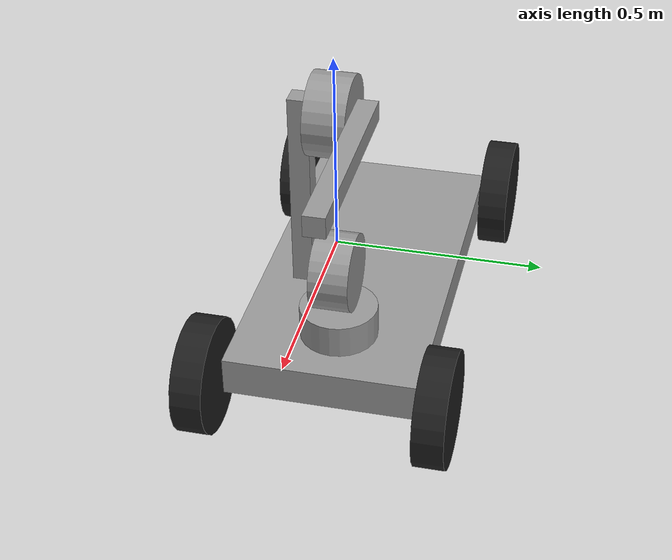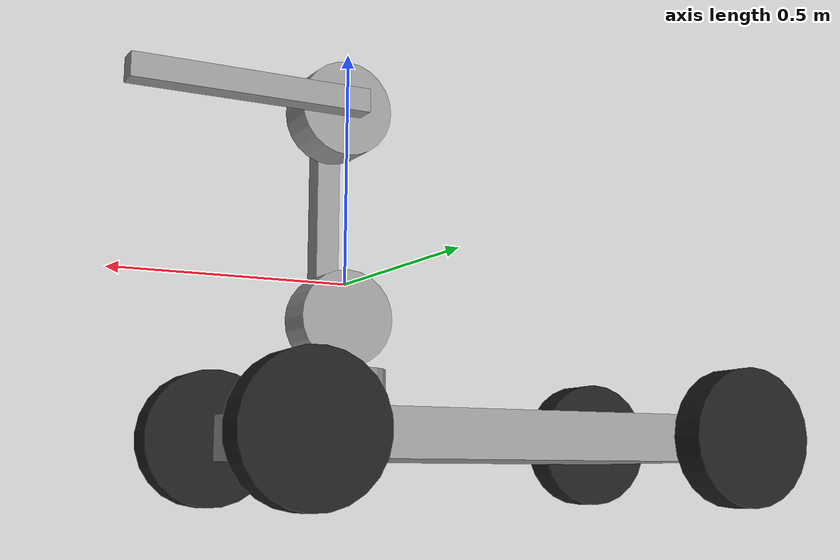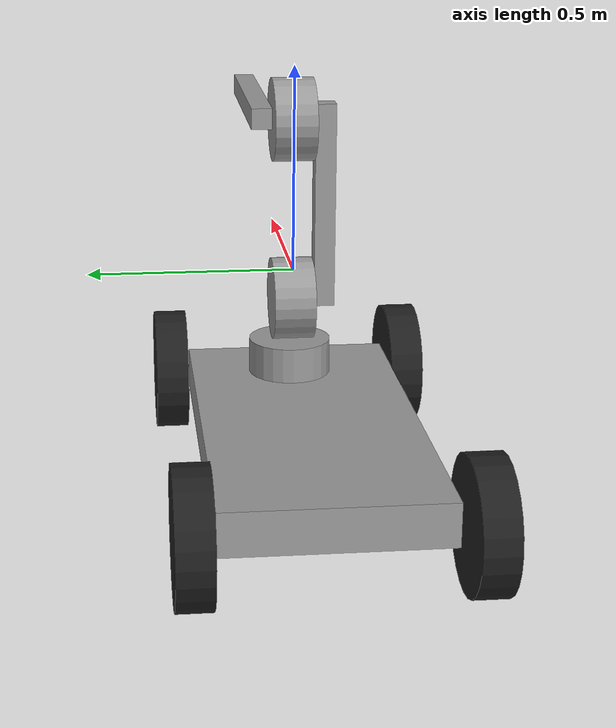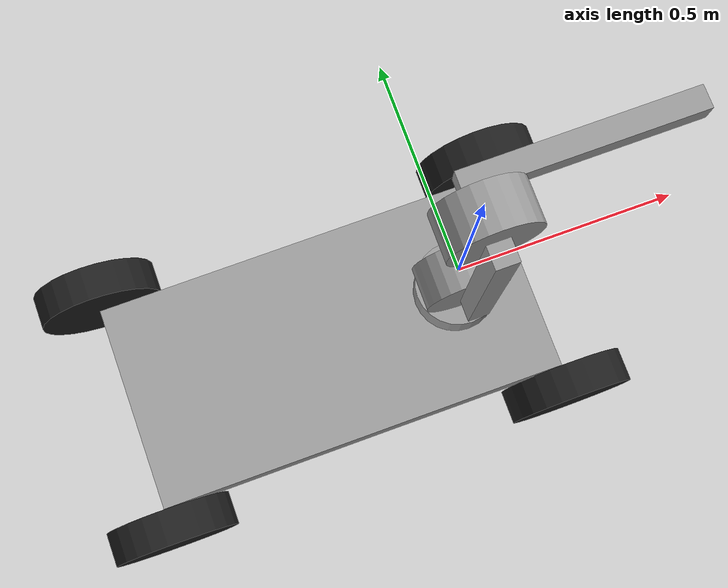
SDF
<?xml version='1.0'?>
<sdf version='1.7'>
  <model name='cartArm'>
    <link name='link_1'>
      <inertial>
        <mass>1</mass>
        <inertia>
          <ixx>0.145833</ixx>
          <ixy>0</ixy>
          <ixz>0</ixz>
          <iyy>0.145833</iyy>
          <iyz>0</iyz>
          <izz>0.125</izz>
        </inertia>
        <pose>0 0 0 0 -0 0</pose>
      </inertial>
      <pose>0.017175 0.00621 -0.229836 0 -0 0</pose>
      <gravity>1</gravity>
      <self_collide>0</self_collide>
      <kinematic>0</kinematic>
      <enable_wind>0</enable_wind>
      <visual name='visual'>
        <pose>0 0 0 0 -0 0</pose>
        <geometry>
          <cylinder>
            <radius>0.1</radius>
            <length>0.1</length>
          </cylinder>
        </geometry>
        <material>
          <lighting>1</lighting>
          <script>
            <uri>file://media/materials/scripts/gazebo.material</uri>
            <name>Gazebo/Grey</name>
          </script>
          <shader type='pixel'>
            <normal_map>__default__</normal_map>
          </shader>
          <ambient>0.3 0.3 0.3 1</ambient>
          <diffuse>0.7 0.7 0.7 1</diffuse>
          <specular>0.01 0.01 0.01 1</specular>
          <emissive>0 0 0 1</emissive>
        </material>
        <transparency>0</transparency>
        <cast_shadows>1</cast_shadows>
      </visual>
      <collision name='collision'>
        <laser_retro>0</laser_retro>
        <max_contacts>10</max_contacts>
        <pose>0 0 0 0 -0 0</pose>
        <geometry>
          <cylinder>
            <radius>0.1</radius>
            <length>0.1</length>
          </cylinder>
        </geometry>
        <surface>
          <friction>
            <ode>
              <mu>1</mu>
              <mu2>1</mu2>
              <fdir1>0 0 0</fdir1>
              <slip1>0</slip1>
              <slip2>0</slip2>
            </ode>
            <torsional>
              <coefficient>1</coefficient>
              <patch_radius>0</patch_radius>
              <surface_radius>0</surface_radius>
              <use_patch_radius>1</use_patch_radius>
              <ode>
                <slip>0</slip>
              </ode>
            </torsional>
          </friction>
          <bounce>
            <restitution_coefficient>0</restitution_coefficient>
            <threshold>1e+06</threshold>
          </bounce>
          <contact>
            <collide_without_contact>0</collide_without_contact>
            <collide_without_contact_bitmask>1</collide_without_contact_bitmask>
            <collide_bitmask>1</collide_bitmask>
            <ode>
              <soft_cfm>0</soft_cfm>
              <soft_erp>0.2</soft_erp>
              <kp>1e+13</kp>
              <kd>1</kd>
              <max_vel>0.01</max_vel>
              <min_depth>0</min_depth>
            </ode>
            <bullet>
              <split_impulse>1</split_impulse>
              <split_impulse_penetration_threshold>-0.01</split_impulse_penetration_threshold>
              <soft_cfm>0</soft_cfm>
              <soft_erp>0.2</soft_erp>
              <kp>1e+13</kp>
              <kd>1</kd>
            </bullet>
          </contact>
        </surface>
      </collision>
    </link>
    <link name='link_2'>
      <inertial>
        <mass>1</mass>
        <inertia>
          <ixx>0.145833</ixx>
          <ixy>0</ixy>
          <ixz>0</ixz>
          <iyy>0.145833</iyy>
          <iyz>0</iyz>
          <izz>0.125</izz>
        </inertia>
        <pose>0 0 0 0 -0 0</pose>
      </inertial>
      <pose>0.01439 0.001977 -0.075713 1.57 -0 0</pose>
      <gravity>1</gravity>
      <self_collide>0</self_collide>
      <kinematic>0</kinematic>
      <enable_wind>0</enable_wind>
      <visual name='visual'>
        <pose>0 0 0 0 -0 0</pose>
        <geometry>
          <cylinder>
            <radius>0.1</radius>
            <length>0.1</length>
          </cylinder>
        </geometry>
        <material>
          <lighting>1</lighting>
          <script>
            <uri>file://media/materials/scripts/gazebo.material</uri>
            <name>Gazebo/Grey</name>
          </script>
          <shader type='pixel'>
            <normal_map>__default__</normal_map>
          </shader>
          <ambient>0.3 0.3 0.3 1</ambient>
          <diffuse>0.7 0.7 0.7 1</diffuse>
          <specular>0.01 0.01 0.01 1</specular>
          <emissive>0 0 0 1</emissive>
        </material>
        <transparency>0</transparency>
        <cast_shadows>1</cast_shadows>
      </visual>
      <collision name='collision'>
        <laser_retro>0</laser_retro>
        <max_contacts>10</max_contacts>
        <pose>0 0 0 0 -0 0</pose>
        <geometry>
          <cylinder>
            <radius>0.1</radius>
            <length>0.1</length>
          </cylinder>
        </geometry>
        <surface>
          <friction>
            <ode>
              <mu>1</mu>
              <mu2>1</mu2>
              <fdir1>0 0 0</fdir1>
              <slip1>0</slip1>
              <slip2>0</slip2>
            </ode>
            <torsional>
              <coefficient>1</coefficient>
              <patch_radius>0</patch_radius>
              <surface_radius>0</surface_radius>
              <use_patch_radius>1</use_patch_radius>
              <ode>
                <slip>0</slip>
              </ode>
            </torsional>
          </friction>
          <bounce>
            <restitution_coefficient>0</restitution_coefficient>
            <threshold>1e+06</threshold>
          </bounce>
          <contact>
            <collide_without_contact>0</collide_without_contact>
            <collide_without_contact_bitmask>1</collide_without_contact_bitmask>
            <collide_bitmask>1</collide_bitmask>
            <ode>
              <soft_cfm>0</soft_cfm>
              <soft_erp>0.2</soft_erp>
              <kp>1e+13</kp>
              <kd>1</kd>
              <max_vel>0.01</max_vel>
              <min_depth>0</min_depth>
            </ode>
            <bullet>
              <split_impulse>1</split_impulse>
              <split_impulse_penetration_threshold>-0.01</split_impulse_penetration_threshold>
              <soft_cfm>0</soft_cfm>
              <soft_erp>0.2</soft_erp>
              <kp>1e+13</kp>
              <kd>1</kd>
            </bullet>
          </contact>
        </surface>
      </collision>
    </link>
    <link name='link_3'>
      <inertial>
        <mass>1</mass>
        <inertia>
          <ixx>0.166667</ixx>
          <ixy>0</ixy>
          <ixz>0</ixz>
          <iyy>0.166667</iyy>
          <iyz>0</iyz>
          <izz>0.166667</izz>
        </inertia>
        <pose>0 0 0 0 -0 0</pose>
      </inertial>
      <pose>0.018985 -0.076327 0.156781 0 -0 0</pose>
      <gravity>1</gravity>
      <self_collide>0</self_collide>
      <kinematic>0</kinematic>
      <enable_wind>0</enable_wind>
      <visual name='visual'>
        <pose>0 0 0 0 -0 0</pose>
        <geometry>
          <box>
            <size>0.05 0.05 0.5</size>
          </box>
        </geometry>
        <material>
          <lighting>1</lighting>
          <script>
            <uri>file://media/materials/scripts/gazebo.material</uri>
            <name>Gazebo/Grey</name>
          </script>
          <shader type='pixel'>
            <normal_map>__default__</normal_map>
          </shader>
          <ambient>0.3 0.3 0.3 1</ambient>
          <diffuse>0.7 0.7 0.7 1</diffuse>
          <specular>0.01 0.01 0.01 1</specular>
          <emissive>0 0 0 1</emissive>
        </material>
        <transparency>0</transparency>
        <cast_shadows>1</cast_shadows>
      </visual>
      <collision name='collision'>
        <laser_retro>0</laser_retro>
        <max_contacts>10</max_contacts>
        <pose>0 0 0 0 -0 0</pose>
        <geometry>
          <box>
            <size>0.05 0.05 0.05</size>
          </box>
        </geometry>
        <surface>
          <friction>
            <ode>
              <mu>1</mu>
              <mu2>1</mu2>
              <fdir1>0 0 0</fdir1>
              <slip1>0</slip1>
              <slip2>0</slip2>
            </ode>
            <torsional>
              <coefficient>1</coefficient>
              <patch_radius>0</patch_radius>
              <surface_radius>0</surface_radius>
              <use_patch_radius>1</use_patch_radius>
              <ode>
                <slip>0</slip>
              </ode>
            </torsional>
          </friction>
          <bounce>
            <restitution_coefficient>0</restitution_coefficient>
            <threshold>1e+06</threshold>
          </bounce>
          <contact>
            <collide_without_contact>0</collide_without_contact>
            <collide_without_contact_bitmask>1</collide_without_contact_bitmask>
            <collide_bitmask>1</collide_bitmask>
            <ode>
              <soft_cfm>0</soft_cfm>
              <soft_erp>0.2</soft_erp>
              <kp>1e+13</kp>
              <kd>1</kd>
              <max_vel>0.01</max_vel>
              <min_depth>0</min_depth>
            </ode>
            <bullet>
              <split_impulse>1</split_impulse>
              <split_impulse_penetration_threshold>-0.01</split_impulse_penetration_threshold>
              <soft_cfm>0</soft_cfm>
              <soft_erp>0.2</soft_erp>
              <kp>1e+13</kp>
              <kd>1</kd>
            </bullet>
          </contact>
        </surface>
      </collision>
    </link>
    <link name='link_5'>
      <inertial>
        <mass>1</mass>
        <inertia>
          <ixx>0.145833</ixx>
          <ixy>0</ixy>
          <ixz>0</ixz>
          <iyy>0.145833</iyy>
          <iyz>0</iyz>
          <izz>0.125</izz>
        </inertia>
        <pose>0 0 0 0 -0 0</pose>
      </inertial>
      <pose>0.020886 0.001552 0.367544 1.56575 -0 0</pose>
      <gravity>1</gravity>
      <self_collide>0</self_collide>
      <kinematic>0</kinematic>
      <enable_wind>0</enable_wind>
      <visual name='visual'>
        <pose>0 0 0 0 -0 0</pose>
        <geometry>
          <cylinder>
            <radius>0.1</radius>
            <length>0.1</length>
          </cylinder>
        </geometry>
        <material>
          <lighting>1</lighting>
          <script>
            <uri>file://media/materials/scripts/gazebo.material</uri>
            <name>Gazebo/Grey</name>
          </script>
          <shader type='pixel'>
            <normal_map>__default__</normal_map>
          </shader>
          <ambient>0.3 0.3 0.3 1</ambient>
          <diffuse>0.7 0.7 0.7 1</diffuse>
          <specular>0.01 0.01 0.01 1</specular>
          <emissive>0 0 0 1</emissive>
        </material>
        <transparency>0</transparency>
        <cast_shadows>1</cast_shadows>
      </visual>
      <collision name='collision'>
        <laser_retro>0</laser_retro>
        <max_contacts>10</max_contacts>
        <pose>0 0 0 0 -0 0</pose>
        <geometry>
          <cylinder>
            <radius>0.1</radius>
            <length>0.1</length>
          </cylinder>
        </geometry>
        <surface>
          <friction>
            <ode>
              <mu>1</mu>
              <mu2>1</mu2>
              <fdir1>0 0 0</fdir1>
              <slip1>0</slip1>
              <slip2>0</slip2>
            </ode>
            <torsional>
              <coefficient>1</coefficient>
              <patch_radius>0</patch_radius>
              <surface_radius>0</surface_radius>
              <use_patch_radius>1</use_patch_radius>
              <ode>
                <slip>0</slip>
              </ode>
            </torsional>
          </friction>
          <bounce>
            <restitution_coefficient>0</restitution_coefficient>
            <threshold>1e+06</threshold>
          </bounce>
          <contact>
            <collide_without_contact>0</collide_without_contact>
            <collide_without_contact_bitmask>1</collide_without_contact_bitmask>
            <collide_bitmask>1</collide_bitmask>
            <ode>
              <soft_cfm>0</soft_cfm>
              <soft_erp>0.2</soft_erp>
              <kp>1e+13</kp>
              <kd>1</kd>
              <max_vel>0.01</max_vel>
              <min_depth>0</min_depth>
            </ode>
            <bullet>
              <split_impulse>1</split_impulse>
              <split_impulse_penetration_threshold>-0.01</split_impulse_penetration_threshold>
              <soft_cfm>0</soft_cfm>
              <soft_erp>0.2</soft_erp>
              <kp>1e+13</kp>
              <kd>1</kd>
            </bullet>
          </contact>
        </surface>
      </collision>
    </link>
    <link name='link_7'>
      <inertial>
        <mass>1</mass>
        <inertia>
          <ixx>0.166667</ixx>
          <ixy>0</ixy>
          <ixz>0</ixz>
          <iyy>0.166667</iyy>
          <iyz>0</iyz>
          <izz>0.166667</izz>
        </inertia>
        <pose>0 0 0 0 -0 0</pose>
      </inertial>
      <pose>0.241886 0.078058 0.375502 0 1.56597 0</pose>
      <gravity>1</gravity>
      <self_collide>0</self_collide>
      <kinematic>0</kinematic>
      <enable_wind>0</enable_wind>
      <visual name='visual'>
        <pose>0 0 0 0 -0 0</pose>
        <geometry>
          <box>
            <size>0.05 0.05 0.5</size>
          </box>
        </geometry>
        <material>
          <lighting>1</lighting>
          <script>
            <uri>file://media/materials/scripts/gazebo.material</uri>
            <name>Gazebo/Grey</name>
          </script>
          <shader type='pixel'>
            <normal_map>__default__</normal_map>
          </shader>
          <ambient>0.3 0.3 0.3 1</ambient>
          <diffuse>0.7 0.7 0.7 1</diffuse>
          <specular>0.01 0.01 0.01 1</specular>
          <emissive>0 0 0 1</emissive>
        </material>
        <transparency>0</transparency>
        <cast_shadows>1</cast_shadows>
      </visual>
      <collision name='collision'>
        <laser_retro>0</laser_retro>
        <max_contacts>10</max_contacts>
        <pose>0 0 0 0 -0 0</pose>
        <geometry>
          <box>
            <size>0.05 0.05 0.5</size>
          </box>
        </geometry>
        <surface>
          <friction>
            <ode>
              <mu>1</mu>
              <mu2>1</mu2>
              <fdir1>0 0 0</fdir1>
              <slip1>0</slip1>
              <slip2>0</slip2>
            </ode>
            <torsional>
              <coefficient>1</coefficient>
              <patch_radius>0</patch_radius>
              <surface_radius>0</surface_radius>
              <use_patch_radius>1</use_patch_radius>
              <ode>
                <slip>0</slip>
              </ode>
            </torsional>
          </friction>
          <bounce>
            <restitution_coefficient>0</restitution_coefficient>
            <threshold>1e+06</threshold>
          </bounce>
          <contact>
            <collide_without_contact>0</collide_without_contact>
            <collide_without_contact_bitmask>1</collide_without_contact_bitmask>
            <collide_bitmask>1</collide_bitmask>
            <ode>
              <soft_cfm>0</soft_cfm>
              <soft_erp>0.2</soft_erp>
              <kp>1e+13</kp>
              <kd>1</kd>
              <max_vel>0.01</max_vel>
              <min_depth>0</min_depth>
            </ode>
            <bullet>
              <split_impulse>1</split_impulse>
              <split_impulse_penetration_threshold>-0.01</split_impulse_penetration_threshold>
              <soft_cfm>0</soft_cfm>
              <soft_erp>0.2</soft_erp>
              <kp>1e+13</kp>
              <kd>1</kd>
            </bullet>
          </contact>
        </surface>
      </collision>
    </link>
    <model name='cart_front_steer'>
      <link name='chassis'>
        <pose>0 0 0.15 0 -0 0</pose>
        <inertial>
          <pose>0.1 0 0 0 -0 0</pose>
          <mass>10</mass>
          <inertia>
            <ixx>0.216667</ixx>
            <iyy>0.841667</iyy>
            <izz>1.04167</izz>
            <ixy>0</ixy>
            <ixz>0</ixz>
            <iyz>0</iyz>
          </inertia>
        </inertial>
        <collision name='collision'>
          <geometry>
            <box>
              <size>1 0.5 0.1</size>
            </box>
          </geometry>
        </collision>
        <visual name='visual'>
          <geometry>
            <box>
              <size>1 0.5 0.1</size>
            </box>
          </geometry>
          <material>
            <script>
              <uri>file://media/materials/scripts/gazebo.material</uri>
              <name>Gazebo/Grey</name>
            </script>
          </material>
        </visual>
      </link>
      <link name='wheel_front_left'>
        <pose>0.5 0.298 0.15 -1.5708 -0.087266 0</pose>
        <inertial>
          <mass>0.5</mass>
          <inertia>
            <ixx>0.00307917</ixx>
            <iyy>0.00307917</iyy>
            <izz>0.005625</izz>
            <ixy>0</ixy>
            <ixz>0</ixz>
            <iyz>0</iyz>
          </inertia>
        </inertial>
        <collision name='collision'>
          <geometry>
            <cylinder>
              <radius>0.15</radius>
              <length>0.08</length>
            </cylinder>
          </geometry>
        </collision>
        <visual name='visual'>
          <geometry>
            <cylinder>
              <radius>0.15</radius>
              <length>0.08</length>
            </cylinder>
          </geometry>
          <material>
            <script>
              <uri>file://media/materials/scripts/gazebo.material</uri>
              <name>Gazebo/Black</name>
            </script>
          </material>
        </visual>
      </link>
      <joint name='wheel_front_left_steer_spin' type='universal'>
        <parent>chassis</parent>
        <child>wheel_front_left</child>
        <axis>
          <xyz>0 -1 0</xyz>
          <limit>
            <lower>-0.610865</lower>
            <upper>0.610865</upper>
          </limit>
        </axis>
        <axis2>
          <xyz>0 0 1</xyz>
          <limit/>
        </axis2>
      </joint>
      <link name='wheel_front_right'>
        <pose>0.5 -0.298 0.15 -1.5708 -0.087266 0</pose>
        <inertial>
          <mass>0.5</mass>
          <inertia>
            <ixx>0.00307917</ixx>
            <iyy>0.00307917</iyy>
            <izz>0.005625</izz>
            <ixy>0</ixy>
            <ixz>0</ixz>
            <iyz>0</iyz>
          </inertia>
        </inertial>
        <collision name='collision'>
          <geometry>
            <cylinder>
              <radius>0.15</radius>
              <length>0.08</length>
            </cylinder>
          </geometry>
        </collision>
        <visual name='visual'>
          <geometry>
            <cylinder>
              <radius>0.15</radius>
              <length>0.08</length>
            </cylinder>
          </geometry>
          <material>
            <script>
              <uri>file://media/materials/scripts/gazebo.material</uri>
              <name>Gazebo/Black</name>
            </script>
          </material>
        </visual>
      </link>
      <joint name='wheel_front_right_steer_spin' type='universal'>
        <parent>chassis</parent>
        <child>wheel_front_right</child>
        <axis>
          <xyz>0 -1 0</xyz>
          <limit>
            <lower>-0.610865</lower>
            <upper>0.610865</upper>
          </limit>
        </axis>
        <axis2>
          <xyz>0 0 1</xyz>
          <limit/>
        </axis2>
      </joint>
      <link name='wheel_rear_left'>
        <pose>-0.5 0.298 0.15 -1.5708 0 0</pose>
        <inertial>
          <mass>0.5</mass>
          <inertia>
            <ixx>0.00307917</ixx>
            <iyy>0.00307917</iyy>
            <izz>0.005625</izz>
            <ixy>0</ixy>
            <ixz>0</ixz>
            <iyz>0</iyz>
          </inertia>
        </inertial>
        <collision name='collision'>
          <geometry>
            <cylinder>
              <radius>0.15</radius>
              <length>0.08</length>
            </cylinder>
          </geometry>
        </collision>
        <visual name='visual'>
          <geometry>
            <cylinder>
              <radius>0.15</radius>
              <length>0.08</length>
            </cylinder>
          </geometry>
          <material>
            <script>
              <uri>file://media/materials/scripts/gazebo.material</uri>
              <name>Gazebo/Black</name>
            </script>
          </material>
        </visual>
      </link>
      <joint name='wheel_rear_left_spin' type='revolute'>
        <parent>chassis</parent>
        <child>wheel_rear_left</child>
        <axis>
          <xyz>0 0 1</xyz>
          <limit>
            <lower>-1e+16</lower>
            <upper>1e+16</upper>
          </limit>
        </axis>
      </joint>
      <link name='wheel_rear_right'>
        <pose>-0.5 -0.298 0.15 -1.5708 0 0</pose>
        <inertial>
          <mass>0.5</mass>
          <inertia>
            <ixx>0.00307917</ixx>
            <iyy>0.00307917</iyy>
            <izz>0.005625</izz>
            <ixy>0</ixy>
            <ixz>0</ixz>
            <iyz>0</iyz>
          </inertia>
        </inertial>
        <collision name='collision'>
          <geometry>
            <cylinder>
              <radius>0.15</radius>
              <length>0.08</length>
            </cylinder>
          </geometry>
        </collision>
        <visual name='visual'>
          <geometry>
            <cylinder>
              <radius>0.15</radius>
              <length>0.08</length>
            </cylinder>
          </geometry>
          <material>
            <script>
              <uri>file://media/materials/scripts/gazebo.material</uri>
              <name>Gazebo/Black</name>
            </script>
          </material>
        </visual>
      </link>
      <joint name='wheel_rear_right_spin' type='revolute'>
        <parent>chassis</parent>
        <child>wheel_rear_right</child>
        <axis>
          <xyz>0 0 1</xyz>
          <limit>
            <lower>-1e+16</lower>
            <upper>1e+16</upper>
          </limit>
        </axis>
      </joint>
      <pose>-0.305476 -0.001763 -0.465119 0 -0 0</pose>
    </model>
    <joint name='chassis_JOINT_0' type='fixed'>
      <parent>cart_front_steer::chassis</parent>
      <child>link_1</child>
      <pose>0 0 0 0 -0 0</pose>
      <physics>
        <ode>
          <limit>
            <cfm>0</cfm>
            <erp>0.2</erp>
          </limit>
          <suspension>
            <cfm>0</cfm>
            <erp>0.2</erp>
          </suspension>
        </ode>
      </physics>
    </joint>
    <joint name='link_1_JOINT_1' type='revolute'>
      <parent>link_1</parent>
      <child>link_2</child>
      <pose>0 0 0 0 -0 0</pose>
      <axis>
        <xyz>0 1 0</xyz>
        <limit>
          <lower>-1.79769e+308</lower>
          <upper>1.79769e+308</upper>
          <effort>-1</effort>
          <velocity>-1</velocity>
        </limit>
        <dynamics>
          <spring_reference>0</spring_reference>
          <spring_stiffness>0</spring_stiffness>
          <damping>0</damping>
        </dynamics>
      </axis>
      <physics>
        <ode>
          <limit>
            <cfm>0</cfm>
            <erp>0.2</erp>
          </limit>
          <suspension>
            <cfm>0</cfm>
            <erp>0.2</erp>
          </suspension>
        </ode>
      </physics>
    </joint>
    <joint name='link_2_JOINT_3' type='fixed'>
      <parent>link_3</parent>
      <child>link_2</child>
      <pose>0 0 0 0 -0 0</pose>
      <physics>
        <ode>
          <limit>
            <cfm>0</cfm>
            <erp>0.2</erp>
          </limit>
          <suspension>
            <cfm>0</cfm>
            <erp>0.2</erp>
          </suspension>
        </ode>
      </physics>
    </joint>
    <joint name='link_3_JOINT_5' type='revolute'>
      <parent>link_3</parent>
      <child>link_5</child>
      <pose>0 0 0 0 -0 0</pose>
      <axis>
        <xyz>0 0 1</xyz>
        <limit>
          <lower>-1.79769e+308</lower>
          <upper>1.79769e+308</upper>
          <effort>-1</effort>
          <velocity>-1</velocity>
        </limit>
        <dynamics>
          <spring_reference>0</spring_reference>
          <spring_stiffness>0</spring_stiffness>
          <damping>0</damping>
        </dynamics>
      </axis>
      <physics>
        <ode>
          <limit>
            <cfm>0</cfm>
            <erp>0.2</erp>
          </limit>
          <suspension>
            <cfm>0</cfm>
            <erp>0.2</erp>
          </suspension>
        </ode>
      </physics>
    </joint>
    <joint name='link_7_JOINT_6' type='fixed'>
      <parent>link_7</parent>
      <child>link_5</child>
      <pose>0 0 0 0 -0 0</pose>
      <physics>
        <ode>
          <limit>
            <cfm>0</cfm>
            <erp>0.2</erp>
          </limit>
          <suspension>
            <cfm>0</cfm>
            <erp>0.2</erp>
          </suspension>
        </ode>
      </physics>
    </joint>
    <static>0</static>
    <allow_auto_disable>1</allow_auto_disable>
  </model>
</sdf>
